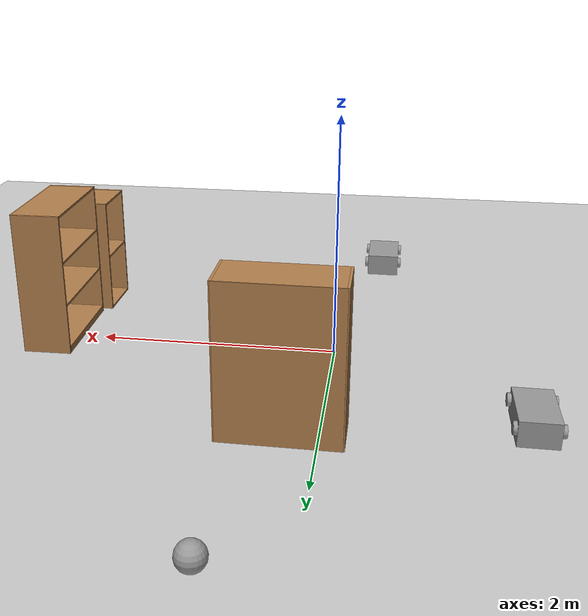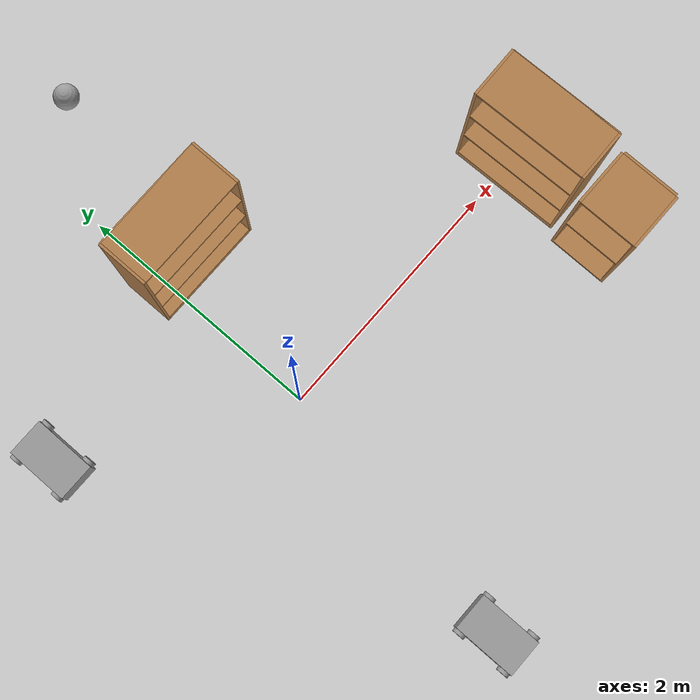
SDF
<sdf version="1.6">
 <world name="default">
  <model name="ground_plane">
   <static>1</static>
   <link name="link">
    <collision name="collision">
     <geometry><plane><normal>0 0 1</normal><size>100 100</size></plane></geometry>
     <surface>
      <contact><collide_bitmask>65535</collide_bitmask></contact>
      <friction><ode><mu>100</mu><mu2>50</mu2></ode></friction>
     </surface>
    </collision>
    <visual name="visual">
     <cast_shadows>0</cast_shadows>
     <geometry><plane><normal>0 0 1</normal><size>100 100</size></plane></geometry>
     <material>
      <script><uri>file://media/materials/scripts/gazebo.material</uri><name>Gazebo/Grey</name></script>
     </material>
    </visual>
   </link>
  </model>
  <model name="bot1">
   <link name="link_0">
    <pose>0 0 -0.016 0 -0 0</pose>
    <inertial>
     <mass>0.488879</mass>
     <inertia>
      <ixx>0.0504768</ixx>
      <ixy>0</ixy>
      <ixz>0</ixz>
      <iyy>0.0504768</iyy>
      <iyz>0</iyz>
      <izz>0.0814798</izz>
     </inertia>
    </inertial>
    <visual name="visual">
     <geometry><box><size>0.3 0.5 0.2</size></box></geometry>
     <material>
      <lighting>1</lighting>
      <script><uri>file://media/materials/scripts/gazebo.material</uri><name>Gazebo/Grey</name></script>
      <shader type="pixel"><normal_map>__default__</normal_map></shader>
      <ambient>0.3 0.3 0.3 1</ambient>
      <diffuse>0.7 0.7 0.7 1</diffuse>
      <specular>0.01 0.01 0.01 1</specular>
      <emissive>0 0 0 1</emissive>
     </material>
    </visual>
    <collision name="collision">
     <geometry><box><size>0.3 0.5 0.2</size></box></geometry>
     <surface>
      <friction>
       <ode><mu>1</mu><mu2>1</mu2><fdir1>0 0 0</fdir1><slip1>0</slip1><slip2>0</slip2></ode>
       <torsional>
        <coefficient>1</coefficient>
        <patch_radius>0</patch_radius>
        <surface_radius>0</surface_radius>
        <use_patch_radius>1</use_patch_radius>
        <ode><slip>0</slip></ode>
       </torsional>
      </friction>
      <bounce><restitution_coefficient>0</restitution_coefficient><threshold>1e+06</threshold></bounce>
      <contact>
       <collide_without_contact>0</collide_without_contact>
       <collide_without_contact_bitmask>1</collide_without_contact_bitmask>
       <collide_bitmask>1</collide_bitmask>
       <ode>
        <soft_cfm>0</soft_cfm>
        <soft_erp>0.2</soft_erp>
        <kp>1e+13</kp>
        <kd>1</kd>
        <max_vel>0.01</max_vel>
        <min_depth>0</min_depth>
       </ode>
       <bullet>
        <split_impulse>1</split_impulse>
        <split_impulse_penetration_threshold>-0.01</split_impulse_penetration_threshold>
        <soft_cfm>0</soft_cfm>
        <soft_erp>0.2</soft_erp>
        <kp>1e+13</kp>
        <kd>1</kd>
       </bullet>
      </contact>
     </surface>
    </collision>
   </link>
   <link name="link_1_clone">
    <pose>0.165005 0.2 0.004 0 1.5707 0</pose>
    <inertial>
     <mass>0.0014441</mass>
     <inertia>
      <ixx>2.41e-06</ixx>
      <ixy>0</ixy>
      <ixz>0</ixz>
      <iyy>2.41e-06</iyy>
      <iyz>0</iyz>
      <izz>3.05e-06</izz>
     </inertia>
    </inertial>
    <visual name="visual">
     <geometry><cylinder><radius>0.05</radius><length>0.03</length></cylinder></geometry>
     <material>
      <lighting>1</lighting>
      <script><uri>file://media/materials/scripts/gazebo.material</uri><name>Gazebo/Grey</name></script>
      <shader type="pixel"><normal_map>__default__</normal_map></shader>
      <ambient>0.3 0.3 0.3 1</ambient>
      <diffuse>0.7 0.7 0.7 1</diffuse>
      <specular>0.01 0.01 0.01 1</specular>
      <emissive>0 0 0 1</emissive>
     </material>
    </visual>
    <collision name="collision">
     <geometry><cylinder><radius>0.05</radius><length>0.03</length></cylinder></geometry>
     <surface>
      <friction>
       <ode><mu>1</mu><mu2>1</mu2><fdir1>0 0 0</fdir1><slip1>0</slip1><slip2>0</slip2></ode>
       <torsional>
        <coefficient>1</coefficient>
        <patch_radius>0</patch_radius>
        <surface_radius>0</surface_radius>
        <use_patch_radius>1</use_patch_radius>
        <ode><slip>0</slip></ode>
       </torsional>
      </friction>
      <bounce><restitution_coefficient>0</restitution_coefficient><threshold>1e+06</threshold></bounce>
      <contact>
       <collide_without_contact>0</collide_without_contact>
       <collide_without_contact_bitmask>1</collide_without_contact_bitmask>
       <collide_bitmask>1</collide_bitmask>
       <ode>
        <soft_cfm>0</soft_cfm>
        <soft_erp>0.2</soft_erp>
        <kp>1e+13</kp>
        <kd>1</kd>
        <max_vel>0.01</max_vel>
        <min_depth>0</min_depth>
       </ode>
       <bullet>
        <split_impulse>1</split_impulse>
        <split_impulse_penetration_threshold>-0.01</split_impulse_penetration_threshold>
        <soft_cfm>0</soft_cfm>
        <soft_erp>0.2</soft_erp>
        <kp>1e+13</kp>
        <kd>1</kd>
       </bullet>
      </contact>
     </surface>
    </collision>
   </link>
   <link name="link_1_clone_0">
    <pose>-0.165005 0.2 0.004 0 1.5707 0</pose>
    <inertial>
     <mass>0.0014441</mass>
     <inertia>
      <ixx>2.41e-06</ixx>
      <ixy>0</ixy>
      <ixz>0</ixz>
      <iyy>2.41e-06</iyy>
      <iyz>0</iyz>
      <izz>3.05e-06</izz>
     </inertia>
    </inertial>
    <visual name="visual">
     <geometry><cylinder><radius>0.05</radius><length>0.03</length></cylinder></geometry>
     <material>
      <lighting>1</lighting>
      <script><uri>file://media/materials/scripts/gazebo.material</uri><name>Gazebo/Grey</name></script>
      <shader type="pixel"><normal_map>__default__</normal_map></shader>
      <ambient>0.3 0.3 0.3 1</ambient>
      <diffuse>0.7 0.7 0.7 1</diffuse>
      <specular>0.01 0.01 0.01 1</specular>
      <emissive>0 0 0 1</emissive>
     </material>
    </visual>
    <collision name="collision">
     <geometry><cylinder><radius>0.05</radius><length>0.03</length></cylinder></geometry>
     <surface>
      <friction>
       <ode><mu>1</mu><mu2>1</mu2><fdir1>0 0 0</fdir1><slip1>0</slip1><slip2>0</slip2></ode>
       <torsional>
        <coefficient>1</coefficient>
        <patch_radius>0</patch_radius>
        <surface_radius>0</surface_radius>
        <use_patch_radius>1</use_patch_radius>
        <ode><slip>0</slip></ode>
       </torsional>
      </friction>
      <bounce><restitution_coefficient>0</restitution_coefficient><threshold>1e+06</threshold></bounce>
      <contact>
       <collide_without_contact>0</collide_without_contact>
       <collide_without_contact_bitmask>1</collide_without_contact_bitmask>
       <collide_bitmask>1</collide_bitmask>
       <ode>
        <soft_cfm>0</soft_cfm>
        <soft_erp>0.2</soft_erp>
        <kp>1e+13</kp>
        <kd>1</kd>
        <max_vel>0.01</max_vel>
        <min_depth>0</min_depth>
       </ode>
       <bullet>
        <split_impulse>1</split_impulse>
        <split_impulse_penetration_threshold>-0.01</split_impulse_penetration_threshold>
        <soft_cfm>0</soft_cfm>
        <soft_erp>0.2</soft_erp>
        <kp>1e+13</kp>
        <kd>1</kd>
       </bullet>
      </contact>
     </surface>
    </collision>
   </link>
   <link name="link_1_clone_1">
    <pose>-0.165005 -0.2 0.004 0 1.5707 0</pose>
    <inertial>
     <mass>0.0014441</mass>
     <inertia>
      <ixx>2.41e-06</ixx>
      <ixy>0</ixy>
      <ixz>0</ixz>
      <iyy>2.41e-06</iyy>
      <iyz>0</iyz>
      <izz>3.05e-06</izz>
     </inertia>
    </inertial>
    <visual name="visual">
     <geometry><cylinder><radius>0.05</radius><length>0.03</length></cylinder></geometry>
     <material>
      <lighting>1</lighting>
      <script><uri>file://media/materials/scripts/gazebo.material</uri><name>Gazebo/Grey</name></script>
      <shader type="pixel"><normal_map>__default__</normal_map></shader>
      <ambient>0.3 0.3 0.3 1</ambient>
      <diffuse>0.7 0.7 0.7 1</diffuse>
      <specular>0.01 0.01 0.01 1</specular>
      <emissive>0 0 0 1</emissive>
     </material>
    </visual>
    <collision name="collision">
     <geometry><cylinder><radius>0.05</radius><length>0.03</length></cylinder></geometry>
     <surface>
      <friction>
       <ode><mu>1</mu><mu2>1</mu2><fdir1>0 0 0</fdir1><slip1>0</slip1><slip2>0</slip2></ode>
       <torsional>
        <coefficient>1</coefficient>
        <patch_radius>0</patch_radius>
        <surface_radius>0</surface_radius>
        <use_patch_radius>1</use_patch_radius>
        <ode><slip>0</slip></ode>
       </torsional>
      </friction>
      <bounce><restitution_coefficient>0</restitution_coefficient><threshold>1e+06</threshold></bounce>
      <contact>
       <collide_without_contact>0</collide_without_contact>
       <collide_without_contact_bitmask>1</collide_without_contact_bitmask>
       <collide_bitmask>1</collide_bitmask>
       <ode>
        <soft_cfm>0</soft_cfm>
        <soft_erp>0.2</soft_erp>
        <kp>1e+13</kp>
        <kd>1</kd>
        <max_vel>0.01</max_vel>
        <min_depth>0</min_depth>
       </ode>
       <bullet>
        <split_impulse>1</split_impulse>
        <split_impulse_penetration_threshold>-0.01</split_impulse_penetration_threshold>
        <soft_cfm>0</soft_cfm>
        <soft_erp>0.2</soft_erp>
        <kp>1e+13</kp>
        <kd>1</kd>
       </bullet>
      </contact>
     </surface>
    </collision>
   </link>
   <link name="link_1_clone_clone">
    <pose>0.165005 -0.2 0.004 0 1.5707 0</pose>
    <inertial>
     <mass>0.0014441</mass>
     <inertia>
      <ixx>2.41e-06</ixx>
      <ixy>0</ixy>
      <ixz>0</ixz>
      <iyy>2.41e-06</iyy>
      <iyz>0</iyz>
      <izz>3.05e-06</izz>
     </inertia>
    </inertial>
    <visual name="visual">
     <geometry><cylinder><radius>0.05</radius><length>0.03</length></cylinder></geometry>
     <material>
      <lighting>1</lighting>
      <script><uri>file://media/materials/scripts/gazebo.material</uri><name>Gazebo/Grey</name></script>
      <shader type="pixel"><normal_map>__default__</normal_map></shader>
      <ambient>0.3 0.3 0.3 1</ambient>
      <diffuse>0.7 0.7 0.7 1</diffuse>
      <specular>0.01 0.01 0.01 1</specular>
      <emissive>0 0 0 1</emissive>
     </material>
    </visual>
    <collision name="collision">
     <geometry><cylinder><radius>0.05</radius><length>0.03</length></cylinder></geometry>
     <surface>
      <friction>
       <ode><mu>1</mu><mu2>1</mu2><fdir1>0 0 0</fdir1><slip1>0</slip1><slip2>0</slip2></ode>
       <torsional>
        <coefficient>1</coefficient>
        <patch_radius>0</patch_radius>
        <surface_radius>0</surface_radius>
        <use_patch_radius>1</use_patch_radius>
        <ode><slip>0</slip></ode>
       </torsional>
      </friction>
      <bounce><restitution_coefficient>0</restitution_coefficient><threshold>1e+06</threshold></bounce>
      <contact>
       <collide_without_contact>0</collide_without_contact>
       <collide_without_contact_bitmask>1</collide_without_contact_bitmask>
       <collide_bitmask>1</collide_bitmask>
       <ode>
        <soft_cfm>0</soft_cfm>
        <soft_erp>0.2</soft_erp>
        <kp>1e+13</kp>
        <kd>1</kd>
        <max_vel>0.01</max_vel>
        <min_depth>0</min_depth>
       </ode>
       <bullet>
        <split_impulse>1</split_impulse>
        <split_impulse_penetration_threshold>-0.01</split_impulse_penetration_threshold>
        <soft_cfm>0</soft_cfm>
        <soft_erp>0.2</soft_erp>
        <kp>1e+13</kp>
        <kd>1</kd>
       </bullet>
      </contact>
     </surface>
    </collision>
   </link>
   <joint name="link_0_JOINT_3" type="revolute">
    <parent>link_0</parent>
    <child>link_1_clone</child>
    <axis>
     <xyz>0 0 1</xyz>
     <use_parent_model_frame>0</use_parent_model_frame>
     <limit>
      <lower>-1.79769e+308</lower>
      <upper>1.79769e+308</upper>
      <effort>-1</effort>
      <velocity>-1</velocity>
     </limit>
     <dynamics>
      <spring_reference>0</spring_reference>
      <spring_stiffness>0</spring_stiffness>
      <damping>0</damping>
      <friction>0</friction>
     </dynamics>
    </axis>
    <physics>
     <ode><limit><cfm>0</cfm><erp>0.2</erp></limit><suspension><cfm>0</cfm><erp>0.2</erp></suspension></ode>
    </physics>
   </joint>
   <joint name="link_0_JOINT_4" type="revolute">
    <parent>link_0</parent>
    <child>link_1_clone_clone</child>
    <axis>
     <xyz>0 0 1</xyz>
     <use_parent_model_frame>0</use_parent_model_frame>
     <limit>
      <lower>-1.79769e+308</lower>
      <upper>1.79769e+308</upper>
      <effort>-1</effort>
      <velocity>-1</velocity>
     </limit>
     <dynamics>
      <spring_reference>0</spring_reference>
      <spring_stiffness>0</spring_stiffness>
      <damping>0</damping>
      <friction>0</friction>
     </dynamics>
    </axis>
    <physics>
     <ode><limit><cfm>0</cfm><erp>0.2</erp></limit><suspension><cfm>0</cfm><erp>0.2</erp></suspension></ode>
    </physics>
   </joint>
   <joint name="link_0_JOINT_5" type="revolute">
    <parent>link_0</parent>
    <child>link_1_clone_1</child>
    <axis>
     <xyz>0 0 -1</xyz>
     <use_parent_model_frame>0</use_parent_model_frame>
     <limit>
      <lower>-1.79769e+308</lower>
      <upper>1.79769e+308</upper>
      <effort>-1</effort>
      <velocity>-1</velocity>
     </limit>
     <dynamics>
      <spring_reference>0</spring_reference>
      <spring_stiffness>0</spring_stiffness>
      <damping>0</damping>
      <friction>0</friction>
     </dynamics>
    </axis>
    <physics>
     <ode><limit><cfm>0</cfm><erp>0.2</erp></limit><suspension><cfm>0</cfm><erp>0.2</erp></suspension></ode>
    </physics>
   </joint>
   <joint name="link_0_JOINT_6" type="revolute">
    <parent>link_0</parent>
    <child>link_1_clone_0</child>
    <axis>
     <xyz>0 0 -1</xyz>
     <use_parent_model_frame>0</use_parent_model_frame>
     <limit>
      <lower>-1.79769e+308</lower>
      <upper>1.79769e+308</upper>
      <effort>-1</effort>
      <velocity>-1</velocity>
     </limit>
     <dynamics>
      <spring_reference>0</spring_reference>
      <spring_stiffness>0</spring_stiffness>
      <damping>0</damping>
      <friction>0</friction>
     </dynamics>
    </axis>
    <physics>
     <ode><limit><cfm>0</cfm><erp>0.2</erp></limit><suspension><cfm>0</cfm><erp>0.2</erp></suspension></ode>
    </physics>
   </joint>
   <static>0</static>
   <pose>-1.50307 1.03529 0.116 0 -0 0</pose>
  </model>
  <model name="bot1_clone">
   <link name="link_0">
    <pose>0 0 -0.016 0 -0 0</pose>
    <inertial>
     <mass>0.488879</mass>
     <inertia>
      <ixx>0.0504768</ixx>
      <ixy>0</ixy>
      <ixz>0</ixz>
      <iyy>0.0504768</iyy>
      <iyz>0</iyz>
      <izz>0.0814798</izz>
     </inertia>
    </inertial>
    <visual name="visual">
     <geometry><box><size>0.3 0.5 0.2</size></box></geometry>
     <material>
      <lighting>1</lighting>
      <script><uri>file://media/materials/scripts/gazebo.material</uri><name>Gazebo/Grey</name></script>
      <shader type="pixel"><normal_map>__default__</normal_map></shader>
      <ambient>0.3 0.3 0.3 1</ambient>
      <diffuse>0.7 0.7 0.7 1</diffuse>
      <specular>0.01 0.01 0.01 1</specular>
      <emissive>0 0 0 1</emissive>
     </material>
    </visual>
    <collision name="collision">
     <geometry><box><size>0.3 0.5 0.2</size></box></geometry>
     <surface>
      <friction>
       <ode><mu>1</mu><mu2>1</mu2><fdir1>0 0 0</fdir1><slip1>0</slip1><slip2>0</slip2></ode>
       <torsional>
        <coefficient>1</coefficient>
        <patch_radius>0</patch_radius>
        <surface_radius>0</surface_radius>
        <use_patch_radius>1</use_patch_radius>
        <ode><slip>0</slip></ode>
       </torsional>
      </friction>
      <bounce><restitution_coefficient>0</restitution_coefficient><threshold>1e+06</threshold></bounce>
      <contact>
       <collide_without_contact>0</collide_without_contact>
       <collide_without_contact_bitmask>1</collide_without_contact_bitmask>
       <collide_bitmask>1</collide_bitmask>
       <ode>
        <soft_cfm>0</soft_cfm>
        <soft_erp>0.2</soft_erp>
        <kp>1e+13</kp>
        <kd>1</kd>
        <max_vel>0.01</max_vel>
        <min_depth>0</min_depth>
       </ode>
       <bullet>
        <split_impulse>1</split_impulse>
        <split_impulse_penetration_threshold>-0.01</split_impulse_penetration_threshold>
        <soft_cfm>0</soft_cfm>
        <soft_erp>0.2</soft_erp>
        <kp>1e+13</kp>
        <kd>1</kd>
       </bullet>
      </contact>
     </surface>
    </collision>
   </link>
   <link name="link_1_clone">
    <pose>0.165005 0.2 0.004 0 1.5707 0</pose>
    <inertial>
     <mass>0.0014441</mass>
     <inertia>
      <ixx>2.41e-06</ixx>
      <ixy>0</ixy>
      <ixz>0</ixz>
      <iyy>2.41e-06</iyy>
      <iyz>0</iyz>
      <izz>3.05e-06</izz>
     </inertia>
    </inertial>
    <visual name="visual">
     <geometry><cylinder><radius>0.05</radius><length>0.03</length></cylinder></geometry>
     <material>
      <lighting>1</lighting>
      <script><uri>file://media/materials/scripts/gazebo.material</uri><name>Gazebo/Grey</name></script>
      <shader type="pixel"><normal_map>__default__</normal_map></shader>
      <ambient>0.3 0.3 0.3 1</ambient>
      <diffuse>0.7 0.7 0.7 1</diffuse>
      <specular>0.01 0.01 0.01 1</specular>
      <emissive>0 0 0 1</emissive>
     </material>
    </visual>
    <collision name="collision">
     <geometry><cylinder><radius>0.05</radius><length>0.03</length></cylinder></geometry>
     <surface>
      <friction>
       <ode><mu>1</mu><mu2>1</mu2><fdir1>0 0 0</fdir1><slip1>0</slip1><slip2>0</slip2></ode>
       <torsional>
        <coefficient>1</coefficient>
        <patch_radius>0</patch_radius>
        <surface_radius>0</surface_radius>
        <use_patch_radius>1</use_patch_radius>
        <ode><slip>0</slip></ode>
       </torsional>
      </friction>
      <bounce><restitution_coefficient>0</restitution_coefficient><threshold>1e+06</threshold></bounce>
      <contact>
       <collide_without_contact>0</collide_without_contact>
       <collide_without_contact_bitmask>1</collide_without_contact_bitmask>
       <collide_bitmask>1</collide_bitmask>
       <ode>
        <soft_cfm>0</soft_cfm>
        <soft_erp>0.2</soft_erp>
        <kp>1e+13</kp>
        <kd>1</kd>
        <max_vel>0.01</max_vel>
        <min_depth>0</min_depth>
       </ode>
       <bullet>
        <split_impulse>1</split_impulse>
        <split_impulse_penetration_threshold>-0.01</split_impulse_penetration_threshold>
        <soft_cfm>0</soft_cfm>
        <soft_erp>0.2</soft_erp>
        <kp>1e+13</kp>
        <kd>1</kd>
       </bullet>
      </contact>
     </surface>
    </collision>
   </link>
   <link name="link_1_clone_0">
    <pose>-0.165005 0.2 0.004 0 1.5707 0</pose>
    <inertial>
     <mass>0.0014441</mass>
     <inertia>
      <ixx>2.41e-06</ixx>
      <ixy>0</ixy>
      <ixz>0</ixz>
      <iyy>2.41e-06</iyy>
      <iyz>0</iyz>
      <izz>3.05e-06</izz>
     </inertia>
    </inertial>
    <visual name="visual">
     <geometry><cylinder><radius>0.05</radius><length>0.03</length></cylinder></geometry>
     <material>
      <lighting>1</lighting>
      <script><uri>file://media/materials/scripts/gazebo.material</uri><name>Gazebo/Grey</name></script>
      <shader type="pixel"><normal_map>__default__</normal_map></shader>
      <ambient>0.3 0.3 0.3 1</ambient>
      <diffuse>0.7 0.7 0.7 1</diffuse>
      <specular>0.01 0.01 0.01 1</specular>
      <emissive>0 0 0 1</emissive>
     </material>
    </visual>
    <collision name="collision">
     <geometry><cylinder><radius>0.05</radius><length>0.03</length></cylinder></geometry>
     <surface>
      <friction>
       <ode><mu>1</mu><mu2>1</mu2><fdir1>0 0 0</fdir1><slip1>0</slip1><slip2>0</slip2></ode>
       <torsional>
        <coefficient>1</coefficient>
        <patch_radius>0</patch_radius>
        <surface_radius>0</surface_radius>
        <use_patch_radius>1</use_patch_radius>
        <ode><slip>0</slip></ode>
       </torsional>
      </friction>
      <bounce><restitution_coefficient>0</restitution_coefficient><threshold>1e+06</threshold></bounce>
      <contact>
       <collide_without_contact>0</collide_without_contact>
       <collide_without_contact_bitmask>1</collide_without_contact_bitmask>
       <collide_bitmask>1</collide_bitmask>
       <ode>
        <soft_cfm>0</soft_cfm>
        <soft_erp>0.2</soft_erp>
        <kp>1e+13</kp>
        <kd>1</kd>
        <max_vel>0.01</max_vel>
        <min_depth>0</min_depth>
       </ode>
       <bullet>
        <split_impulse>1</split_impulse>
        <split_impulse_penetration_threshold>-0.01</split_impulse_penetration_threshold>
        <soft_cfm>0</soft_cfm>
        <soft_erp>0.2</soft_erp>
        <kp>1e+13</kp>
        <kd>1</kd>
       </bullet>
      </contact>
     </surface>
    </collision>
   </link>
   <link name="link_1_clone_1">
    <pose>-0.165005 -0.2 0.004 0 1.5707 0</pose>
    <inertial>
     <mass>0.0014441</mass>
     <inertia>
      <ixx>2.41e-06</ixx>
      <ixy>0</ixy>
      <ixz>0</ixz>
      <iyy>2.41e-06</iyy>
      <iyz>0</iyz>
      <izz>3.05e-06</izz>
     </inertia>
    </inertial>
    <visual name="visual">
     <geometry><cylinder><radius>0.05</radius><length>0.03</length></cylinder></geometry>
     <material>
      <lighting>1</lighting>
      <script><uri>file://media/materials/scripts/gazebo.material</uri><name>Gazebo/Grey</name></script>
      <shader type="pixel"><normal_map>__default__</normal_map></shader>
      <ambient>0.3 0.3 0.3 1</ambient>
      <diffuse>0.7 0.7 0.7 1</diffuse>
      <specular>0.01 0.01 0.01 1</specular>
      <emissive>0 0 0 1</emissive>
     </material>
    </visual>
    <collision name="collision">
     <geometry><cylinder><radius>0.05</radius><length>0.03</length></cylinder></geometry>
     <surface>
      <friction>
       <ode><mu>1</mu><mu2>1</mu2><fdir1>0 0 0</fdir1><slip1>0</slip1><slip2>0</slip2></ode>
       <torsional>
        <coefficient>1</coefficient>
        <patch_radius>0</patch_radius>
        <surface_radius>0</surface_radius>
        <use_patch_radius>1</use_patch_radius>
        <ode><slip>0</slip></ode>
       </torsional>
      </friction>
      <bounce><restitution_coefficient>0</restitution_coefficient><threshold>1e+06</threshold></bounce>
      <contact>
       <collide_without_contact>0</collide_without_contact>
       <collide_without_contact_bitmask>1</collide_without_contact_bitmask>
       <collide_bitmask>1</collide_bitmask>
       <ode>
        <soft_cfm>0</soft_cfm>
        <soft_erp>0.2</soft_erp>
        <kp>1e+13</kp>
        <kd>1</kd>
        <max_vel>0.01</max_vel>
        <min_depth>0</min_depth>
       </ode>
       <bullet>
        <split_impulse>1</split_impulse>
        <split_impulse_penetration_threshold>-0.01</split_impulse_penetration_threshold>
        <soft_cfm>0</soft_cfm>
        <soft_erp>0.2</soft_erp>
        <kp>1e+13</kp>
        <kd>1</kd>
       </bullet>
      </contact>
     </surface>
    </collision>
   </link>
   <link name="link_1_clone_clone">
    <pose>0.165005 -0.2 0.004 0 1.5707 0</pose>
    <inertial>
     <mass>0.0014441</mass>
     <inertia>
      <ixx>2.41e-06</ixx>
      <ixy>0</ixy>
      <ixz>0</ixz>
      <iyy>2.41e-06</iyy>
      <iyz>0</iyz>
      <izz>3.05e-06</izz>
     </inertia>
    </inertial>
    <visual name="visual">
     <geometry><cylinder><radius>0.05</radius><length>0.03</length></cylinder></geometry>
     <material>
      <lighting>1</lighting>
      <script><uri>file://media/materials/scripts/gazebo.material</uri><name>Gazebo/Grey</name></script>
      <shader type="pixel"><normal_map>__default__</normal_map></shader>
      <ambient>0.3 0.3 0.3 1</ambient>
      <diffuse>0.7 0.7 0.7 1</diffuse>
      <specular>0.01 0.01 0.01 1</specular>
      <emissive>0 0 0 1</emissive>
     </material>
    </visual>
    <collision name="collision">
     <geometry><cylinder><radius>0.05</radius><length>0.03</length></cylinder></geometry>
     <surface>
      <friction>
       <ode><mu>1</mu><mu2>1</mu2><fdir1>0 0 0</fdir1><slip1>0</slip1><slip2>0</slip2></ode>
       <torsional>
        <coefficient>1</coefficient>
        <patch_radius>0</patch_radius>
        <surface_radius>0</surface_radius>
        <use_patch_radius>1</use_patch_radius>
        <ode><slip>0</slip></ode>
       </torsional>
      </friction>
      <bounce><restitution_coefficient>0</restitution_coefficient><threshold>1e+06</threshold></bounce>
      <contact>
       <collide_without_contact>0</collide_without_contact>
       <collide_without_contact_bitmask>1</collide_without_contact_bitmask>
       <collide_bitmask>1</collide_bitmask>
       <ode>
        <soft_cfm>0</soft_cfm>
        <soft_erp>0.2</soft_erp>
        <kp>1e+13</kp>
        <kd>1</kd>
        <max_vel>0.01</max_vel>
        <min_depth>0</min_depth>
       </ode>
       <bullet>
        <split_impulse>1</split_impulse>
        <split_impulse_penetration_threshold>-0.01</split_impulse_penetration_threshold>
        <soft_cfm>0</soft_cfm>
        <soft_erp>0.2</soft_erp>
        <kp>1e+13</kp>
        <kd>1</kd>
       </bullet>
      </contact>
     </surface>
    </collision>
   </link>
   <joint name="link_0_JOINT_3" type="revolute">
    <parent>link_0</parent>
    <child>link_1_clone</child>
    <axis>
     <xyz>0 0 1</xyz>
     <use_parent_model_frame>0</use_parent_model_frame>
     <limit>
      <lower>-1.79769e+308</lower>
      <upper>1.79769e+308</upper>
      <effort>-1</effort>
      <velocity>-1</velocity>
     </limit>
     <dynamics>
      <spring_reference>0</spring_reference>
      <spring_stiffness>0</spring_stiffness>
      <damping>0</damping>
      <friction>0</friction>
     </dynamics>
    </axis>
    <physics>
     <ode><limit><cfm>0</cfm><erp>0.2</erp></limit><suspension><cfm>0</cfm><erp>0.2</erp></suspension></ode>
    </physics>
   </joint>
   <joint name="link_0_JOINT_4" type="revolute">
    <parent>link_0</parent>
    <child>link_1_clone_clone</child>
    <axis>
     <xyz>0 0 1</xyz>
     <use_parent_model_frame>0</use_parent_model_frame>
     <limit>
      <lower>-1.79769e+308</lower>
      <upper>1.79769e+308</upper>
      <effort>-1</effort>
      <velocity>-1</velocity>
     </limit>
     <dynamics>
      <spring_reference>0</spring_reference>
      <spring_stiffness>0</spring_stiffness>
      <damping>0</damping>
      <friction>0</friction>
     </dynamics>
    </axis>
    <physics>
     <ode><limit><cfm>0</cfm><erp>0.2</erp></limit><suspension><cfm>0</cfm><erp>0.2</erp></suspension></ode>
    </physics>
   </joint>
   <joint name="link_0_JOINT_5" type="revolute">
    <parent>link_0</parent>
    <child>link_1_clone_1</child>
    <axis>
     <xyz>0 0 -1</xyz>
     <use_parent_model_frame>0</use_parent_model_frame>
     <limit>
      <lower>-1.79769e+308</lower>
      <upper>1.79769e+308</upper>
      <effort>-1</effort>
      <velocity>-1</velocity>
     </limit>
     <dynamics>
      <spring_reference>0</spring_reference>
      <spring_stiffness>0</spring_stiffness>
      <damping>0</damping>
      <friction>0</friction>
     </dynamics>
    </axis>
    <physics>
     <ode><limit><cfm>0</cfm><erp>0.2</erp></limit><suspension><cfm>0</cfm><erp>0.2</erp></suspension></ode>
    </physics>
   </joint>
   <joint name="link_0_JOINT_6" type="revolute">
    <parent>link_0</parent>
    <child>link_1_clone_0</child>
    <axis>
     <xyz>0 0 -1</xyz>
     <use_parent_model_frame>0</use_parent_model_frame>
     <limit>
      <lower>-1.79769e+308</lower>
      <upper>1.79769e+308</upper>
      <effort>-1</effort>
      <velocity>-1</velocity>
     </limit>
     <dynamics>
      <spring_reference>0</spring_reference>
      <spring_stiffness>0</spring_stiffness>
      <damping>0</damping>
      <friction>0</friction>
     </dynamics>
    </axis>
    <physics>
     <ode><limit><cfm>0</cfm><erp>0.2</erp></limit><suspension><cfm>0</cfm><erp>0.2</erp></suspension></ode>
    </physics>
   </joint>
   <static>0</static>
   <pose>-0.349536 -2.14318 0.116 0 -0 0</pose>
  </model>
  <model name="bookshelf">
   <static>1</static>
   <link name="link">
    <inertial><mass>1</mass></inertial>
    <collision name="back">
     <pose>0 0.005 0.6 0 -0 0</pose>
     <geometry><box><size>0.9 0.01 1.2</size></box></geometry>
    </collision>
    <visual name="visual1">
     <pose>0 0.005 0.6 0 -0 0</pose>
     <geometry><box><size>0.9 0.01 1.2</size></box></geometry>
     <material>
      <script><uri>file://media/materials/scripts/gazebo.material</uri><name>Gazebo/Wood</name></script>
     </material>
    </visual>
    <collision name="left_side">
     <pose>0.45 -0.195 0.6 0 -0 0</pose>
     <geometry><box><size>0.02 0.4 1.2</size></box></geometry>
    </collision>
    <visual name="visual2">
     <pose>0.45 -0.195 0.6 0 -0 0</pose>
     <geometry><box><size>0.02 0.4 1.2</size></box></geometry>
     <material>
      <script><uri>file://media/materials/scripts/gazebo.material</uri><name>Gazebo/Wood</name></script>
     </material>
    </visual>
    <collision name="right_side">
     <pose>-0.45 -0.195 0.6 0 -0 0</pose>
     <geometry><box><size>0.02 0.4 1.2</size></box></geometry>
    </collision>
    <visual name="visual3">
     <pose>-0.45 -0.195 0.6 0 -0 0</pose>
     <geometry><box><size>0.02 0.4 1.2</size></box></geometry>
     <material>
      <script><uri>file://media/materials/scripts/gazebo.material</uri><name>Gazebo/Wood</name></script>
     </material>
    </visual>
    <collision name="bottom">
     <pose>0 -0.195 0.03 0 -0 0</pose>
     <geometry><box><size>0.88 0.4 0.06</size></box></geometry>
    </collision>
    <visual name="visual4">
     <pose>0 -0.195 0.03 0 -0 0</pose>
     <geometry><box><size>0.88 0.4 0.06</size></box></geometry>
     <material>
      <script><uri>file://media/materials/scripts/gazebo.material</uri><name>Gazebo/Wood</name></script>
     </material>
    </visual>
    <collision name="top">
     <pose>0 -0.195 1.19 0 -0 0</pose>
     <geometry><box><size>0.88 0.4 0.02</size></box></geometry>
    </collision>
    <visual name="visual5">
     <pose>0 -0.195 1.19 0 -0 0</pose>
     <geometry><box><size>0.88 0.4 0.02</size></box></geometry>
     <material>
      <script><uri>file://media/materials/scripts/gazebo.material</uri><name>Gazebo/Wood</name></script>
     </material>
    </visual>
    <collision name="low_shelf">
     <pose>0 -0.195 0.43 0 -0 0</pose>
     <geometry><box><size>0.88 0.4 0.02</size></box></geometry>
    </collision>
    <visual name="visual6">
     <pose>0 -0.195 0.43 0 -0 0</pose>
     <geometry><box><size>0.88 0.4 0.02</size></box></geometry>
     <material>
      <script><uri>file://media/materials/scripts/gazebo.material</uri><name>Gazebo/Wood</name></script>
     </material>
    </visual>
    <collision name="high_shelf">
     <pose>0 -0.195 0.8 0 -0 0</pose>
     <geometry><box><size>0.88 0.4 0.02</size></box></geometry>
    </collision>
    <visual name="visual7">
     <pose>0 -0.195 0.8 0 -0 0</pose>
     <geometry><box><size>0.88 0.4 0.02</size></box></geometry>
     <material>
      <script><uri>file://media/materials/scripts/gazebo.material</uri><name>Gazebo/Wood</name></script>
     </material>
    </visual>
   </link>
   <pose>0.267032 1.51952 0 0 -0 0</pose>
  </model>
  <model name="bookshelf_0">
   <static>1</static>
   <link name="link">
    <inertial><mass>1</mass></inertial>
    <collision name="back">
     <pose>0 0.005 0.6 0 -0 0</pose>
     <geometry><box><size>0.9 0.01 1.2</size></box></geometry>
    </collision>
    <visual name="visual1">
     <pose>0 0.005 0.6 0 -0 0</pose>
     <geometry><box><size>0.9 0.01 1.2</size></box></geometry>
     <material>
      <script><uri>file://media/materials/scripts/gazebo.material</uri><name>Gazebo/Wood</name></script>
     </material>
    </visual>
    <collision name="left_side">
     <pose>0.45 -0.195 0.6 0 -0 0</pose>
     <geometry><box><size>0.02 0.4 1.2</size></box></geometry>
    </collision>
    <visual name="visual2">
     <pose>0.45 -0.195 0.6 0 -0 0</pose>
     <geometry><box><size>0.02 0.4 1.2</size></box></geometry>
     <material>
      <script><uri>file://media/materials/scripts/gazebo.material</uri><name>Gazebo/Wood</name></script>
     </material>
    </visual>
    <collision name="right_side">
     <pose>-0.45 -0.195 0.6 0 -0 0</pose>
     <geometry><box><size>0.02 0.4 1.2</size></box></geometry>
    </collision>
    <visual name="visual3">
     <pose>-0.45 -0.195 0.6 0 -0 0</pose>
     <geometry><box><size>0.02 0.4 1.2</size></box></geometry>
     <material>
      <script><uri>file://media/materials/scripts/gazebo.material</uri><name>Gazebo/Wood</name></script>
     </material>
    </visual>
    <collision name="bottom">
     <pose>0 -0.195 0.03 0 -0 0</pose>
     <geometry><box><size>0.88 0.4 0.06</size></box></geometry>
    </collision>
    <visual name="visual4">
     <pose>0 -0.195 0.03 0 -0 0</pose>
     <geometry><box><size>0.88 0.4 0.06</size></box></geometry>
     <material>
      <script><uri>file://media/materials/scripts/gazebo.material</uri><name>Gazebo/Wood</name></script>
     </material>
    </visual>
    <collision name="top">
     <pose>0 -0.195 1.19 0 -0 0</pose>
     <geometry><box><size>0.88 0.4 0.02</size></box></geometry>
    </collision>
    <visual name="visual5">
     <pose>0 -0.195 1.19 0 -0 0</pose>
     <geometry><box><size>0.88 0.4 0.02</size></box></geometry>
     <material>
      <script><uri>file://media/materials/scripts/gazebo.material</uri><name>Gazebo/Wood</name></script>
     </material>
    </visual>
    <collision name="low_shelf">
     <pose>0 -0.195 0.43 0 -0 0</pose>
     <geometry><box><size>0.88 0.4 0.02</size></box></geometry>
    </collision>
    <visual name="visual6">
     <pose>0 -0.195 0.43 0 -0 0</pose>
     <geometry><box><size>0.88 0.4 0.02</size></box></geometry>
     <material>
      <script><uri>file://media/materials/scripts/gazebo.material</uri><name>Gazebo/Wood</name></script>
     </material>
    </visual>
    <collision name="high_shelf">
     <pose>0 -0.195 0.8 0 -0 0</pose>
     <geometry><box><size>0.88 0.4 0.02</size></box></geometry>
    </collision>
    <visual name="visual7">
     <pose>0 -0.195 0.8 0 -0 0</pose>
     <geometry><box><size>0.88 0.4 0.02</size></box></geometry>
     <material>
      <script><uri>file://media/materials/scripts/gazebo.material</uri><name>Gazebo/Wood</name></script>
     </material>
    </visual>
   </link>
   <pose>2.59409 -0.093063 0 0 0 -1.54953</pose>
  </model>
  <model name="cabinet">
   <static>1</static>
   <link name="cabinet_bottom_plate">
    <inertial>
     <pose>0 0 -1 0 -0 0</pose>
     <inertia><ixx>2.05</ixx><ixy>0</ixy><ixz>0</ixz><iyy>2.05</iyy><iyz>0</iyz><izz>2.05</izz></inertia>
     <mass>25</mass>
    </inertial>
    <collision name="cabinet_bottom_plate_geom">
     <pose>0 0 0.01 0 -0 0</pose>
     <geometry><box><size>0.45 0.45 0.02</size></box></geometry>
    </collision>
    <visual name="cabinet_bottom_plate_geom_visual">
     <pose>0 0 0.01 0 -0 0</pose>
     <geometry><box><size>0.45 0.45 0.02</size></box></geometry>
     <material>
      <script><uri>file://media/materials/scripts/gazebo.material</uri><name>Gazebo/Wood</name></script>
     </material>
    </visual>
    <collision name="cabinet_bottom_plate_geom_cabinet_back_plate">
     <pose>0.235 0 0.51 0 -0 0</pose>
     <geometry><box><size>0.02 0.45 1.02</size></box></geometry>
    </collision>
    <visual name="cabinet_bottom_plate_geom_cabinet_back_plate_visual">
     <pose>0.235 0 0.51 0 -0 0</pose>
     <geometry><box><size>0.02 0.45 1.02</size></box></geometry>
     <material>
      <script><uri>file://media/materials/scripts/gazebo.material</uri><name>Gazebo/Wood</name></script>
     </material>
    </visual>
    <collision name="cabinet_bottom_plate_geom_cabinet_left_plate">
     <pose>0 0.235 0.51 0 -0 0</pose>
     <geometry><box><size>0.45 0.02 1.02</size></box></geometry>
    </collision>
    <visual name="cabinet_bottom_plate_geom_cabinet_left_plate_visual">
     <pose>0 0.235 0.51 0 -0 0</pose>
     <geometry><box><size>0.45 0.02 1.02</size></box></geometry>
     <material>
      <script><uri>file://media/materials/scripts/gazebo.material</uri><name>Gazebo/Wood</name></script>
     </material>
    </visual>
    <collision name="cabinet_bottom_plate_geom_cabinet_middle_plate">
     <pose>0 0 0.51 0 -0 0</pose>
     <geometry><box><size>0.45 0.45 0.02</size></box></geometry>
    </collision>
    <visual name="cabinet_bottom_plate_geom_cabinet_middle_plate_visual">
     <pose>0 0 0.51 0 -0 0</pose>
     <geometry><box><size>0.45 0.45 0.02</size></box></geometry>
     <material>
      <script><uri>file://media/materials/scripts/gazebo.material</uri><name>Gazebo/Wood</name></script>
     </material>
    </visual>
    <collision name="cabinet_bottom_plate_geom_cabinet_right_plate">
     <pose>0 -0.235 0.51 0 -0 0</pose>
     <geometry><box><size>0.45 0.02 1.02</size></box></geometry>
    </collision>
    <visual name="cabinet_bottom_plate_geom_cabinet_right_plate_visual">
     <pose>0 -0.235 0.51 0 -0 0</pose>
     <geometry><box><size>0.45 0.02 1.02</size></box></geometry>
     <material>
      <script><uri>file://media/materials/scripts/gazebo.material</uri><name>Gazebo/Wood</name></script>
     </material>
    </visual>
    <collision name="cabinet_bottom_plate_geom_cabinet_top_plate">
     <pose>0 0 1.01 0 -0 0</pose>
     <geometry><box><size>0.45 0.45 0.02</size></box></geometry>
    </collision>
    <visual name="cabinet_bottom_plate_geom_cabinet_top_plate_visual">
     <pose>0 0 1.01 0 -0 0</pose>
     <geometry><box><size>0.45 0.45 0.02</size></box></geometry>
     <material>
      <script><uri>file://media/materials/scripts/gazebo.material</uri><name>Gazebo/Wood</name></script>
     </material>
    </visual>
   </link>
   <pose>2.36362 -0.863517 0 0 -0 0</pose>
  </model>
  <model name="my_ball">
   <link name="link_0">
    <inertial>
     <mass>1</mass>
     <inertia><ixx>0.1</ixx><ixy>0</ixy><ixz>0</ixz><iyy>0.1</iyy><iyz>0</iyz><izz>0.1</izz></inertia>
    </inertial>
    <visual name="visual">
     <geometry><sphere><radius>0.1</radius></sphere></geometry>
     <material>
      <lighting>1</lighting>
      <script><uri>file://media/materials/scripts/gazebo.material</uri><name>Gazebo/Grey</name></script>
      <shader type="pixel"><normal_map>__default__</normal_map></shader>
      <ambient>1 1 1 1</ambient>
      <diffuse>1 1 1 1</diffuse>
      <specular>1 1 1 1</specular>
      <emissive>1 1 1 1</emissive>
     </material>
    </visual>
    <collision name="collision">
     <geometry><sphere><radius>0.1</radius></sphere></geometry>
     <surface>
      <friction>
       <ode><mu>1</mu><mu2>1</mu2><fdir1>0 0 0</fdir1><slip1>0</slip1><slip2>0</slip2></ode>
       <torsional>
        <coefficient>1</coefficient>
        <patch_radius>0</patch_radius>
        <surface_radius>0</surface_radius>
        <use_patch_radius>1</use_patch_radius>
        <ode><slip>0</slip></ode>
       </torsional>
      </friction>
      <bounce><restitution_coefficient>0</restitution_coefficient><threshold>1e+06</threshold></bounce>
      <contact>
       <collide_without_contact>0</collide_without_contact>
       <collide_without_contact_bitmask>1</collide_without_contact_bitmask>
       <collide_bitmask>1</collide_bitmask>
       <ode>
        <soft_cfm>0</soft_cfm>
        <soft_erp>0.2</soft_erp>
        <kp>1e+13</kp>
        <kd>1</kd>
        <max_vel>0.01</max_vel>
        <min_depth>0</min_depth>
       </ode>
       <bullet>
        <split_impulse>1</split_impulse>
        <split_impulse_penetration_threshold>-0.01</split_impulse_penetration_threshold>
        <soft_cfm>0</soft_cfm>
        <soft_erp>0.2</soft_erp>
        <kp>1e+13</kp>
        <kd>1</kd>
       </bullet>
      </contact>
     </surface>
    </collision>
   </link>
   <static>0</static>
   <pose>0.563926 2.8413 0.1 0 -0 0</pose>
  </model>
 </world>
</sdf>
